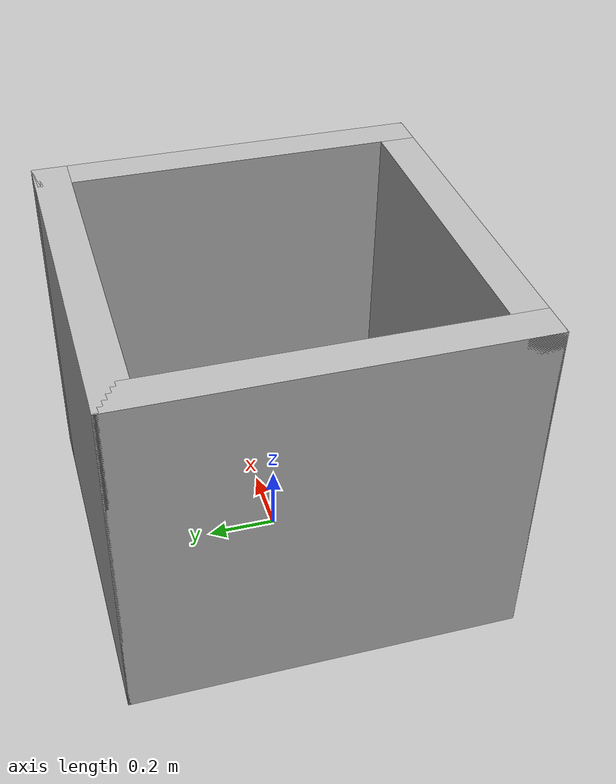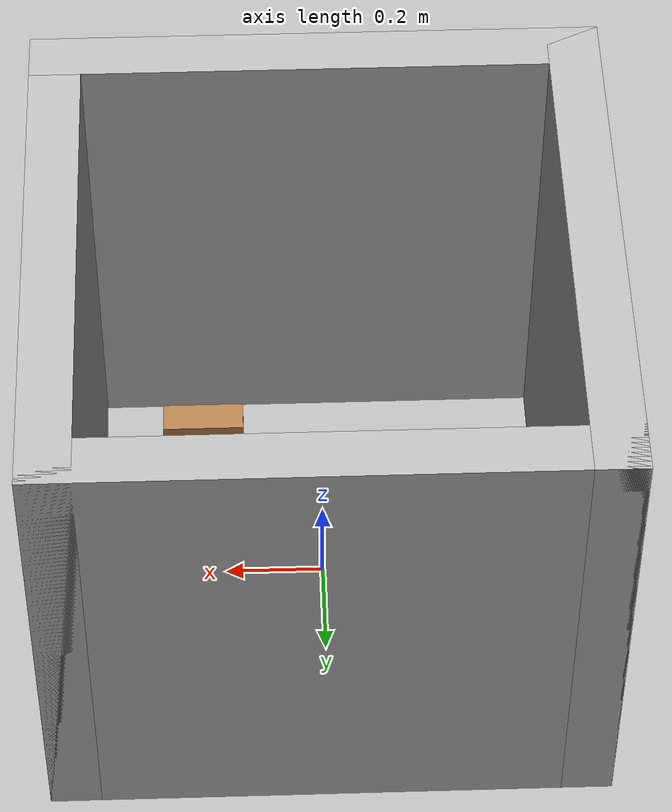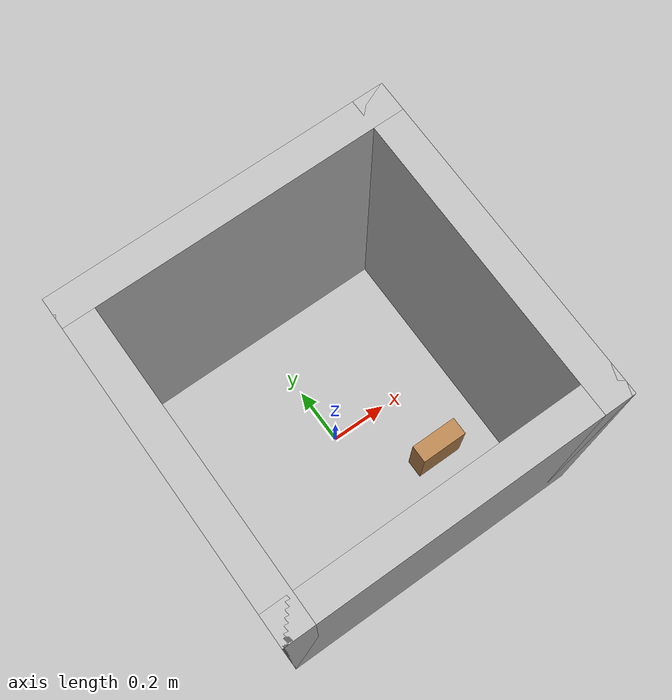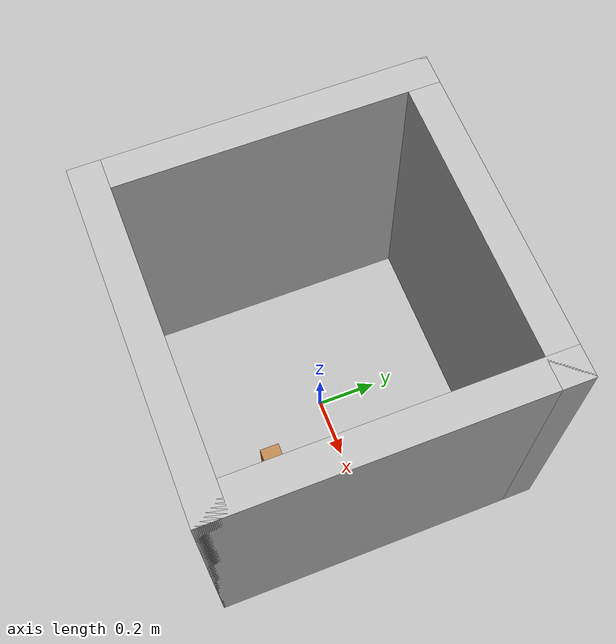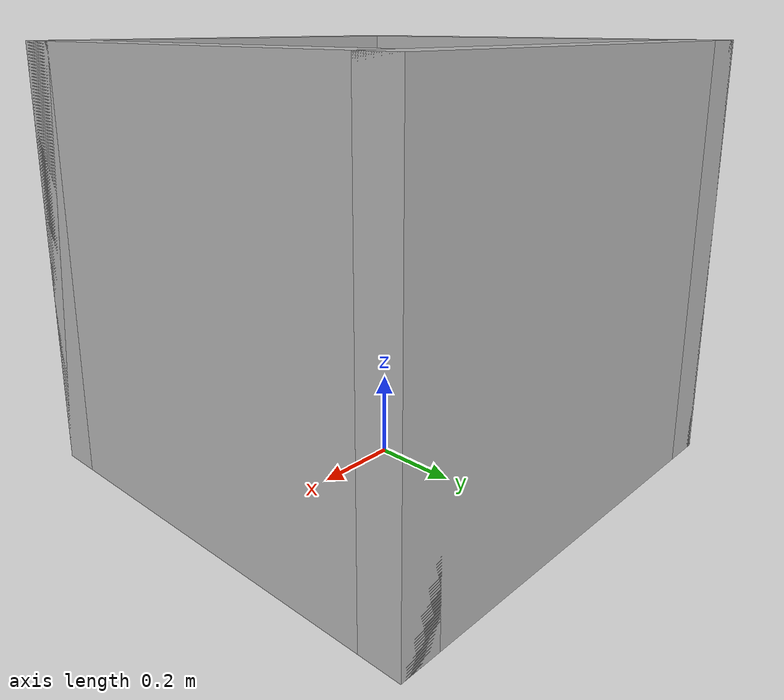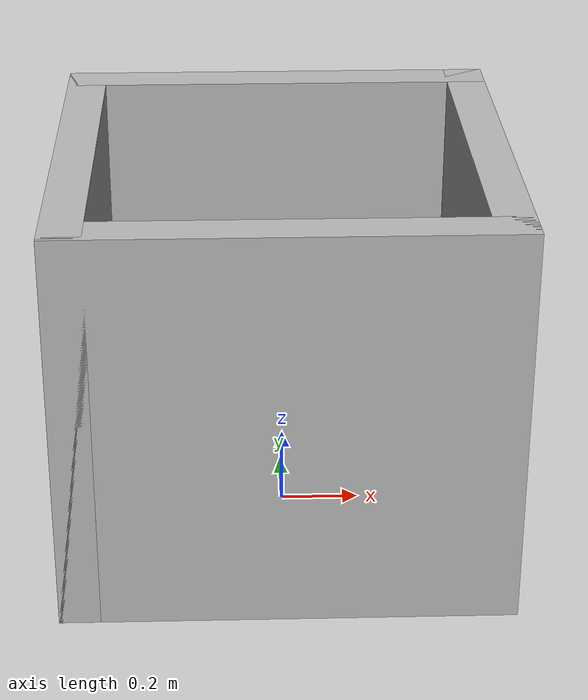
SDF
<sdf version="1.6">
 <world name="default">
  <include><uri>model://sun</uri></include>
  <include>
   <uri>model://cheezits_textured</uri>
   <pose>0.24 -0.24 0 0 0 0</pose>
   <name>cheezits_box</name>
  </include>
  <include><uri>model://arena_1</uri><name>arena</name></include>
  <plugin name="stepping_plugin" filename="libstepping_plugin.so"/>
  <plugin name="collision_map_plugin" filename="libcollision_map_plugin.so"/>
  <physics name="ode" type="ode">
   <real_time_update_rate>1000</real_time_update_rate>
   <ode>
    <solver><type>quick</type><friction_model>cone_model</friction_model></solver>
    <constraints><contact_surface_layer>0.002</contact_surface_layer></constraints>
   </ode>
  </physics>
 </world>
</sdf>

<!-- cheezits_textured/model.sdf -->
<sdf version="1.4">
    <model name="cheezits">
        <link name="link_1">
            <pose>0 0 0.10795 0 0 0</pose>
            <gravity>true</gravity>
            <inertial>
                <pose>0 0 0 0 0 0</pose>
                <inertia>
                    <ixx>0.0042204216666666666</ixx>
                    <ixy>0</ixy>
                    <ixz>0</ixz>
                    <iyy>0.006155901666666667</iyy>
                    <iyz>0</iyz>
                    <izz>0.002607521666666666</izz>
                </inertia>
                <mass>2</mass>
            </inertial>
            <visual name="visual">
                <cast_shadows>0</cast_shadows>
                <geometry>
                    <box>
                        <size>0.1651 0.0635 0.2159</size>
                    </box>
                </geometry>
                <material>
                    <script>
                        <uri>file://media/materials/scripts/gazebo.material</uri>
                        <uri>file://media/materials/scripts/gazebo.material</uri>
                        <name>Gazebo/Wood</name>
                    </script>
                </material>
            </visual>
            <collision name="box_collision">
                <geometry>
                    <box>
                        <size>0.1651 0.0635 0.2159</size>
                    </box>
                </geometry>
                <surface>
                    <friction>
                        <ode>
                            <mu>0.2</mu>
                            <mu2>0.2</mu2>
                        </ode>
                    </friction>
                </surface>
            </collision>
        </link>
        <plugin name="position_2d" filename="libposition_2d_plugin.so">
            <linkName>link_1</linkName>
            <kP_pos>50</kP_pos>
            <kI_pos>0.0</kI_pos>
            <kD_pos>0.0</kD_pos>
            <max_vel>1.0</max_vel>
            <kP_rot>20</kP_rot>
            <kI_rot>0.0</kI_rot>
            <kD_rot>0.0</kD_rot>
            <max_torque>0.1</max_torque>
            <kP_vel>100.0</kP_vel>
            <kI_vel>0.0</kI_vel>
            <kD_vel>0.0</kD_vel>
            <max_force>2.0</max_force>
        </plugin>
    </model>
</sdf>

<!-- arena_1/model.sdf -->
<sdf version="1.5">
<model name="arena_1m">
    <static>true</static>
    <link name="north_wall">
      <pose>0 0.5 0.5 0 0 0</pose>
      <visual name="visual">
        <geometry>
          <box>
            <size>1.1 0.1 1</size>
          </box>
        </geometry>
      </visual>
      <collision name="collision">
        <geometry>
          <box>
            <size>1.1 0.1 1</size>
          </box>
        </geometry>
      </collision>
    </link>
    <link name="south_wall">
      <pose>0 -0.5 0.5 0 0 0</pose>
      <visual name="visual">
        <geometry>
          <box>
            <size>1.1 0.1 1</size>
          </box>
        </geometry>
      </visual>
      <collision name="collision">
        <geometry>
          <box>
            <size>1.1 0.1 1</size>
          </box>
        </geometry>
      </collision>
    </link>
    <link name="east_wall">
      <pose>0.5 0 0.5 0 0 0</pose>
      <visual name="visual">
        <geometry>
          <box>
            <size>0.1 1.1 1</size>
          </box>
        </geometry>
      </visual>
      <collision name="collision">
        <geometry>
          <box>
            <size>0.1 1.1 1</size>
          </box>
        </geometry>
      </collision>
    </link>
    <link name="west_wall">
      <pose>-0.5 0 0.5 0 0 0</pose>
      <visual name="visual">
        <geometry>
          <box>
            <size>0.1 1.1 1</size>
          </box>
        </geometry>
      </visual>
      <collision name="collision">
        <geometry>
          <box>
            <size>0.1 1.1 1</size>
          </box>
        </geometry>
      </collision>
    </link>
  </model>
</sdf>
